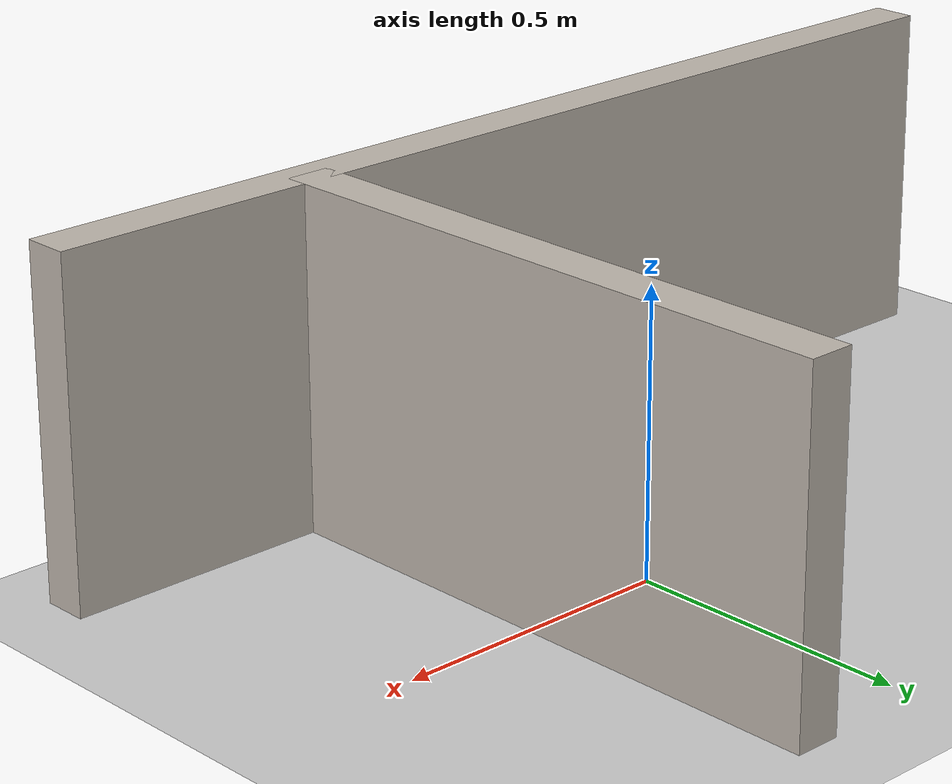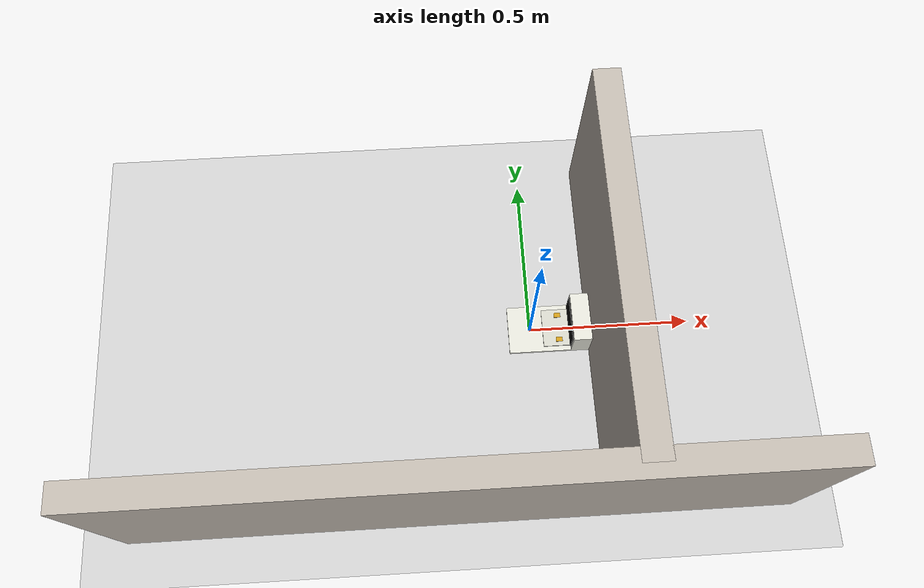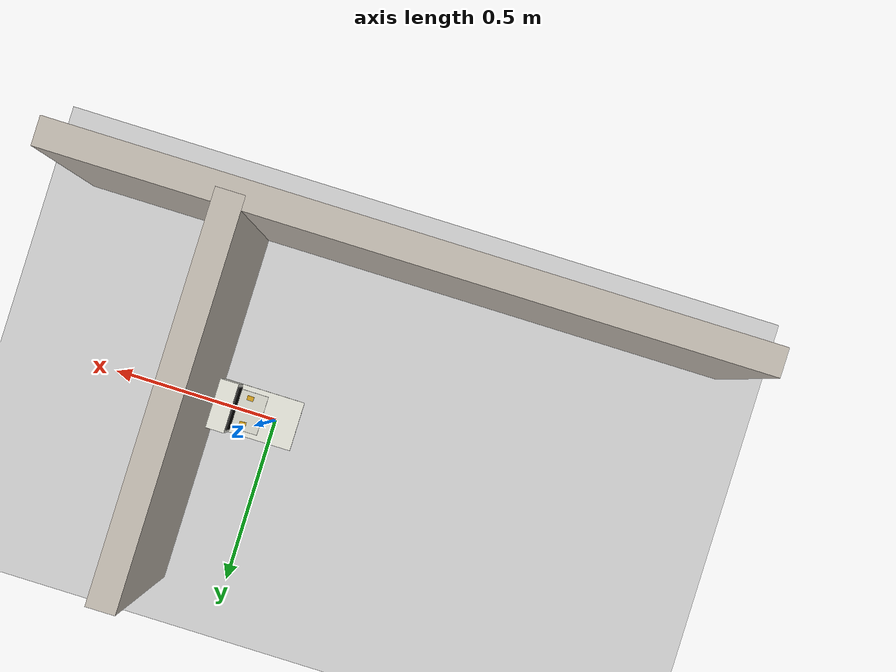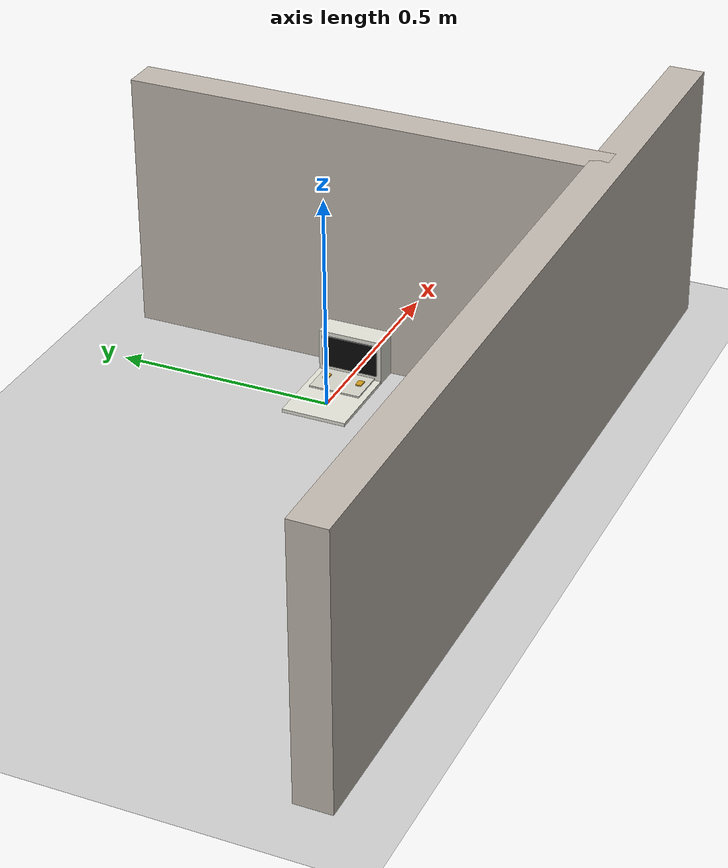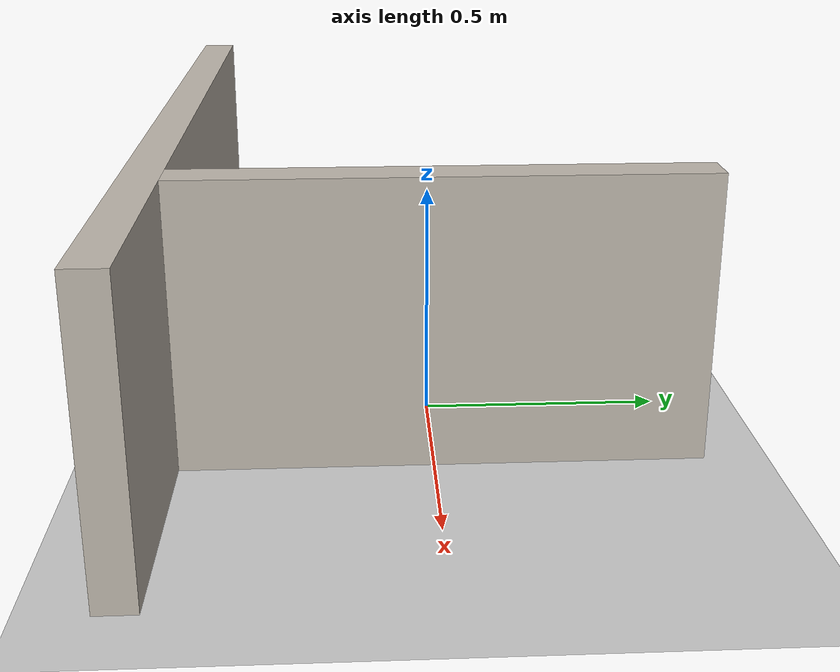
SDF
<?xml version="1.0"?>
<sdf version="1.8">
  <world name="default">
    <physics type="ode">
      <real_time_update_rate>400</real_time_update_rate>
      <max_step_size>0.0025</max_step_size>
      <real_time_factor>1</real_time_factor>
    </physics>

    <plugin filename="gz-sim-physics-system" name="gz::sim::systems::Physics"/>
    <plugin filename="gz-sim-user-commands-system" name="gz::sim::systems::UserCommands"/>
    <plugin filename="gz-sim-scene-broadcaster-system" name="gz::sim::systems::SceneBroadcaster"/>
    <plugin filename="gz-sim-sensors-system" name="gz::sim::systems::Sensors">
      <render_engine>ogre2</render_engine>
    </plugin>

    <light type="directional" name="sun">
      <cast_shadows>false</cast_shadows>
      <pose>0 0 10 0 0 0</pose>
      <diffuse>0.9 0.9 0.9 1</diffuse>
      <direction>-0.5 0.1 -0.9</direction>
    </light>

    <model name="ground_plane">
      <static>true</static>
      <link name="link">
        <collision name="collision">
          <geometry><plane><normal>0 0 1</normal><size>4 4</size></plane></geometry>
        </collision>
        <visual name="visual">
          <geometry><plane><normal>0 0 1</normal><size>4 4</size></plane></geometry>
        </visual>
      </link>
    </model>

    <model name="corner_back_wall">
      <static>true</static>
      <pose>0.22 0 0.30 0 0 0</pose>
      <link name="link">
        <collision name="collision">
          <geometry><box><size>0.08 1.10 0.60</size></box></geometry>
        </collision>
        <visual name="visual">
          <geometry><box><size>0.08 1.10 0.60</size></box></geometry>
          <material><diffuse>0.75 0.72 0.68 1</diffuse></material>
        </visual>
      </link>
    </model>

    <model name="corner_side_wall">
      <static>true</static>
      <pose>-0.25 -0.55 0.30 0 0 0</pose>
      <link name="link">
        <collision name="collision">
          <geometry><box><size>1.96 0.08 0.60</size></box></geometry>
        </collision>
        <visual name="visual">
          <geometry><box><size>1.96 0.08 0.60</size></box></geometry>
          <material><diffuse>0.75 0.72 0.68 1</diffuse></material>
        </visual>
      </link>
    </model>

    <model name="s5max_dock">
      <static>true</static>
      <pose>0.152 0 0.0525 0 0 0</pose>
      <link name="link">
        <collision name="back_panel">
          <geometry><box><size>0.056 0.15 0.105</size></box></geometry>
        </collision>
        <visual name="tower_body">
          <geometry><box><size>0.056 0.15 0.105</size></box></geometry>
          <material><diffuse>0.88 0.88 0.84 1</diffuse></material>
        </visual>
        <visual name="infrared_window">
          <pose>-0.029 0 0.005 0 0 0</pose>
          <geometry><box><size>0.004 0.132 0.075</size></box></geometry>
          <material><diffuse>0.03 0.03 0.03 1</diffuse></material>
        </visual>
        <visual name="floor_base">
          <pose>-0.12 0 -0.0485 0 0 0</pose>
          <geometry><box><size>0.20 0.15 0.008</size></box></geometry>
          <material><diffuse>0.88 0.88 0.84 1</diffuse></material>
        </visual>
        <visual name="connector_step">
          <pose>-0.062 0 -0.0465 0 0 0</pose>
          <geometry><box><size>0.10 0.12 0.012</size></box></geometry>
          <material><diffuse>0.82 0.82 0.78 1</diffuse></material>
        </visual>
        <visual name="left_contact">
          <pose>-0.062 0.040 -0.039 0 0 0</pose>
          <geometry><box><size>0.020 0.014 0.003</size></box></geometry>
          <material><diffuse>0.8 0.6 0.1 1</diffuse></material>
        </visual>
        <visual name="right_contact">
          <pose>-0.062 -0.040 -0.039 0 0 0</pose>
          <geometry><box><size>0.020 0.014 0.003</size></box></geometry>
          <material><diffuse>0.8 0.6 0.1 1</diffuse></material>
        </visual>
      </link>
    </model>
  </world>
</sdf>
